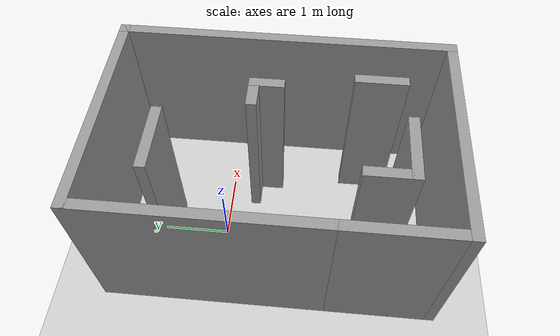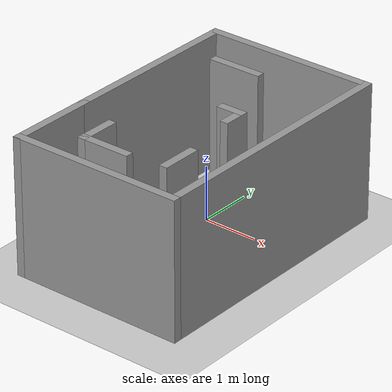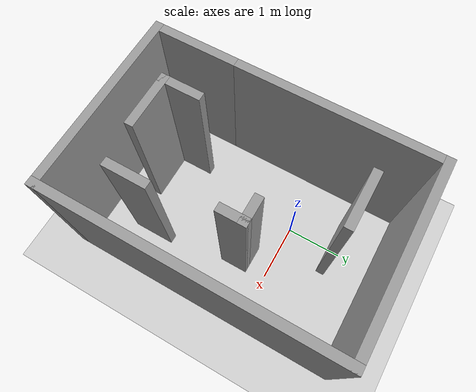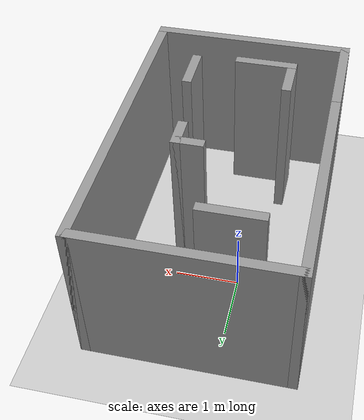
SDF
<sdf version="1.7">
 <world name="default">
  <light name="sun" type="directional">
   <pose>0 0 10 0 -0 0</pose>
   <diffuse>0.8 0.8 0.8 1</diffuse>
   <specular>0.2 0.2 0.2 1</specular>
   <attenuation>
    <range>1000</range>
    <constant>0.9</constant>
    <linear>0.01</linear>
    <quadratic>0.001</quadratic>
   </attenuation>
   <direction>-0.5 0.1 -0.9</direction>
   <spot><inner_angle>0</inner_angle><outer_angle>0</outer_angle><falloff>0</falloff></spot>
  </light>
  <model name="ground_plane">
   <static>1</static>
   <link name="link">
    <collision name="collision">
     <geometry><plane><normal>0 0 1</normal><size>100 100</size></plane></geometry>
     <surface><friction><ode><mu>100</mu><mu2>50</mu2></ode></friction></surface>
    </collision>
    <visual name="visual">
     <cast_shadows>0</cast_shadows>
     <geometry><plane><normal>0 0 1</normal><size>100 100</size></plane></geometry>
     <material>
      <script><uri>file://media/materials/scripts/gazebo.material</uri><name>Gazebo/Grey</name></script>
     </material>
    </visual>
   </link>
  </model>
  <gravity>0 0 -9.8</gravity>
  <magnetic_field>6e-06 2.3e-05 -4.2e-05</magnetic_field>
  <atmosphere type="adiabatic"/>
  <physics type="ode">
   <max_step_size>0.001</max_step_size>
   <real_time_factor>1</real_time_factor>
   <real_time_update_rate>1000</real_time_update_rate>
  </physics>
  <scene><ambient>0.4 0.4 0.4 1</ambient><background>0.7 0.7 0.7 1</background><shadows>1</shadows></scene>
  <audio><device>default</device></audio>
  <spherical_coordinates>
   <surface_model>EARTH_WGS84</surface_model>
   <latitude_deg>0</latitude_deg>
   <longitude_deg>0</longitude_deg>
   <elevation>0</elevation>
   <heading_deg>0</heading_deg>
  </spherical_coordinates>
  <model name="mmm1">
   <pose>0.41 -0.775 0 0 -0 0</pose>
   <link name="Wall_10">
    <collision name="Wall_10_Collision">
     <geometry><box><size>3.25 0.15 2.5</size></box></geometry>
     <pose>0 0 1.25 0 -0 0</pose>
    </collision>
    <visual name="Wall_10_Visual">
     <pose>0 0 1.25 0 -0 0</pose>
     <geometry><box><size>3.25 0.15 2.5</size></box></geometry>
     <material>
      <script><uri>file://media/materials/scripts/gazebo.material</uri><name>Gazebo/Grey</name></script>
      <ambient>1 1 1 1</ambient>
     </material>
     <meta><layer>0</layer></meta>
    </visual>
    <pose>-0 -2.425 0 0 -0 3.14159</pose>
   </link>
   <link name="Wall_11">
    <collision name="Wall_11_Collision">
     <geometry><box><size>1.65 0.15 2.5</size></box></geometry>
     <pose>0 0 1.25 0 -0 0</pose>
    </collision>
    <visual name="Wall_11_Visual">
     <pose>0 0 1.25 0 -0 0</pose>
     <geometry><box><size>1.65 0.15 2.5</size></box></geometry>
     <material>
      <script><uri>file://media/materials/scripts/gazebo.material</uri><name>Gazebo/Grey</name></script>
      <ambient>1 1 1 1</ambient>
     </material>
     <meta><layer>0</layer></meta>
    </visual>
    <pose>-1.55 -1.675 0 0 -0 1.5708</pose>
   </link>
   <link name="Wall_13">
    <collision name="Wall_13_Collision">
     <geometry><box><size>1 0.15 2.5</size></box></geometry>
     <pose>0 0 1.25 0 -0 0</pose>
    </collision>
    <visual name="Wall_13_Visual">
     <pose>0 0 1.25 0 -0 0</pose>
     <geometry><box><size>1 0.15 2.5</size></box></geometry>
     <material>
      <script><uri>file://media/materials/scripts/gazebo.material</uri><name>Gazebo/Grey</name></script>
      <ambient>1 1 1 1</ambient>
     </material>
     <meta><layer>0</layer></meta>
    </visual>
    <pose>-0.457501 1.61258 0 0 -0 0</pose>
   </link>
   <link name="Wall_18">
    <collision name="Wall_18_Collision">
     <geometry><box><size>0.5 0.15 2.5</size></box></geometry>
     <pose>0 0 1.25 0 -0 0</pose>
    </collision>
    <visual name="Wall_18_Visual">
     <pose>0 0 1.25 0 -0 0</pose>
     <geometry><box><size>0.5 0.15 2.5</size></box></geometry>
     <material>
      <script><uri>file://media/materials/scripts/gazebo.material</uri><name>Gazebo/Grey</name></script>
      <ambient>1 1 1 1</ambient>
     </material>
     <meta><layer>0</layer></meta>
    </visual>
    <pose>0.438972 0.365534 0 0 -0 0</pose>
   </link>
   <link name="Wall_19">
    <collision name="Wall_19_Collision">
     <geometry><box><size>0.5 0.15 2.5</size></box></geometry>
     <pose>0 0 1.25 0 -0 0</pose>
    </collision>
    <visual name="Wall_19_Visual">
     <pose>0 0 1.25 0 -0 0</pose>
     <geometry><box><size>0.5 0.15 2.5</size></box></geometry>
     <material>
      <script><uri>file://media/materials/scripts/gazebo.material</uri><name>Gazebo/Grey</name></script>
      <ambient>1 1 1 1</ambient>
     </material>
     <meta><layer>0</layer></meta>
    </visual>
    <pose>0.613972 0.190534 0 0 -0 -1.5708</pose>
   </link>
   <link name="Wall_22">
    <collision name="Wall_22_Collision">
     <geometry><box><size>0.75 0.15 2.5</size></box></geometry>
     <pose>0 0 1.25 0 -0 0</pose>
    </collision>
    <visual name="Wall_22_Visual">
     <pose>0 0 1.25 0 -0 0</pose>
     <geometry><box><size>0.75 0.15 2.5</size></box></geometry>
     <material>
      <script><uri>file://media/materials/scripts/gazebo.material</uri><name>Gazebo/Grey</name></script>
      <ambient>1 1 1 1</ambient>
     </material>
     <meta><layer>0</layer></meta>
    </visual>
    <pose>-0.76182 -1.50333 0 0 -0 -1.5708</pose>
   </link>
   <link name="Wall_23">
    <collision name="Wall_23_Collision">
     <geometry><box><size>1 0.15 2.5</size></box></geometry>
     <pose>0 0 1.25 0 -0 0</pose>
    </collision>
    <visual name="Wall_23_Visual">
     <pose>0 0 1.25 0 -0 0</pose>
     <geometry><box><size>1 0.15 2.5</size></box></geometry>
     <material>
      <script><uri>file://media/materials/scripts/gazebo.material</uri><name>Gazebo/Grey</name></script>
      <ambient>1 1 1 1</ambient>
     </material>
     <meta><layer>0</layer></meta>
    </visual>
    <pose>-0.33682 -1.80333 0 0 -0 0</pose>
   </link>
   <link name="Wall_25">
    <collision name="Wall_25_Collision">
     <geometry><box><size>0.75 0.15 2.5</size></box></geometry>
     <pose>0 0 1.25 0 -0 0</pose>
    </collision>
    <visual name="Wall_25_Visual">
     <pose>0 0 1.25 0 -0 0</pose>
     <geometry><box><size>0.75 0.15 2.5</size></box></geometry>
     <material>
      <script><uri>file://media/materials/scripts/gazebo.material</uri><name>Gazebo/Grey</name></script>
      <ambient>1 1 1 1</ambient>
     </material>
     <meta><layer>0</layer></meta>
    </visual>
    <pose>0.807039 -1.40276 0 0 -0 -1.5708</pose>
   </link>
   <link name="Wall_7">
    <collision name="Wall_7_Collision">
     <geometry><box><size>3.5 0.15 2.5</size></box></geometry>
     <pose>0 0 1.25 0 -0 0</pose>
    </collision>
    <visual name="Wall_7_Visual">
     <pose>0 0 1.25 0 -0 0</pose>
     <geometry><box><size>3.5 0.15 2.5</size></box></geometry>
     <material>
      <script><uri>file://media/materials/scripts/gazebo.material</uri><name>Gazebo/Grey</name></script>
      <ambient>1 1 1 1</ambient>
     </material>
     <meta><layer>0</layer></meta>
    </visual>
    <pose>-1.55 0.75 0 0 -0 1.5708</pose>
   </link>
   <link name="Wall_8">
    <collision name="Wall_8_Collision">
     <geometry><box><size>3.25 0.15 2.5</size></box></geometry>
     <pose>0 0 1.25 0 -0 0</pose>
    </collision>
    <visual name="Wall_8_Visual">
     <pose>0 0 1.25 0 -0 0</pose>
     <geometry><box><size>3.25 0.15 2.5</size></box></geometry>
     <material>
      <script><uri>file://media/materials/scripts/gazebo.material</uri><name>Gazebo/Grey</name></script>
      <ambient>1 1 1 1</ambient>
     </material>
     <meta><layer>0</layer></meta>
    </visual>
    <pose>-0 2.425 0 0 -0 0</pose>
   </link>
   <link name="Wall_9">
    <collision name="Wall_9_Collision">
     <geometry><box><size>5 0.15 2.5</size></box></geometry>
     <pose>0 0 1.25 0 -0 0</pose>
    </collision>
    <visual name="Wall_9_Visual">
     <pose>0 0 1.25 0 -0 0</pose>
     <geometry><box><size>5 0.15 2.5</size></box></geometry>
     <material>
      <script><uri>file://media/materials/scripts/gazebo.material</uri><name>Gazebo/Grey</name></script>
      <ambient>1 1 1 1</ambient>
     </material>
     <meta><layer>0</layer></meta>
    </visual>
    <pose>1.55 -0 0 0 -0 -1.5708</pose>
   </link>
   <static>1</static>
  </model>
 </world>
</sdf>
